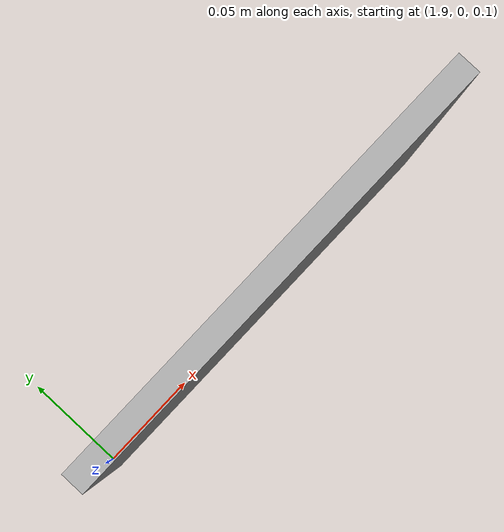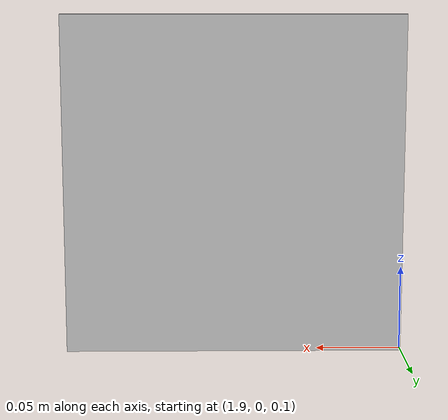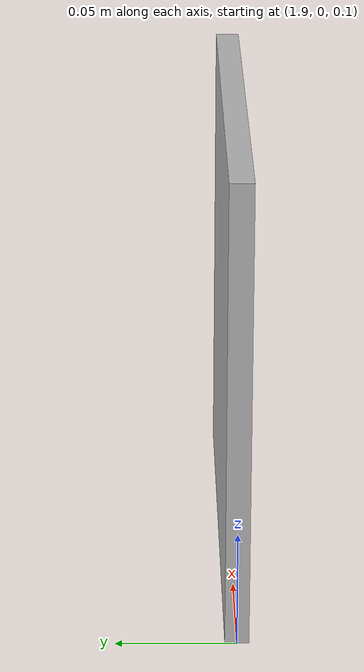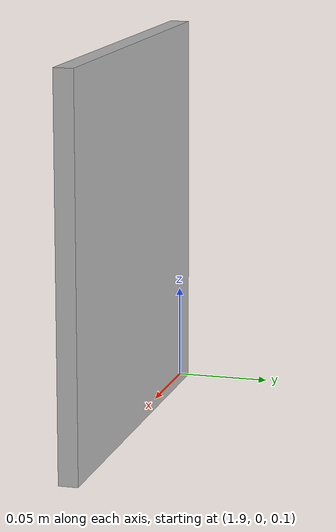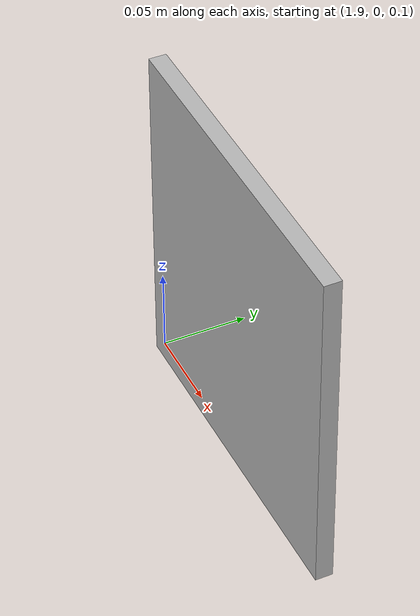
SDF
<?xml version="1.0" ?>
<sdf version="1.6">
  <model name="aruco_marker">
    <static>true</static>

    <link name="marker_link">
      <!-- x y z roll pitch yaw -->
      <pose>2 0 0.2 0 0 0</pose>

      <visual name="marker_visual">
        <geometry>
          <box>
            <!-- width thickness height -->
            <size>0.2 0.01 0.2</size>
          </box>
        </geometry>

        <material>
          <script>
            <uri>model://aruco_marker/materials/scripts</uri>
            <uri>model://aruco_marker/materials/textures</uri>
            <name>Aruco/Marker0</name>
          </script>
        </material>
      </visual>

      <collision name="marker_collision">
        <geometry>
          <box>
            <size>0.2 0.01 0.2</size>
          </box>
        </geometry>
      </collision>
    </link>
  </model>
</sdf>
